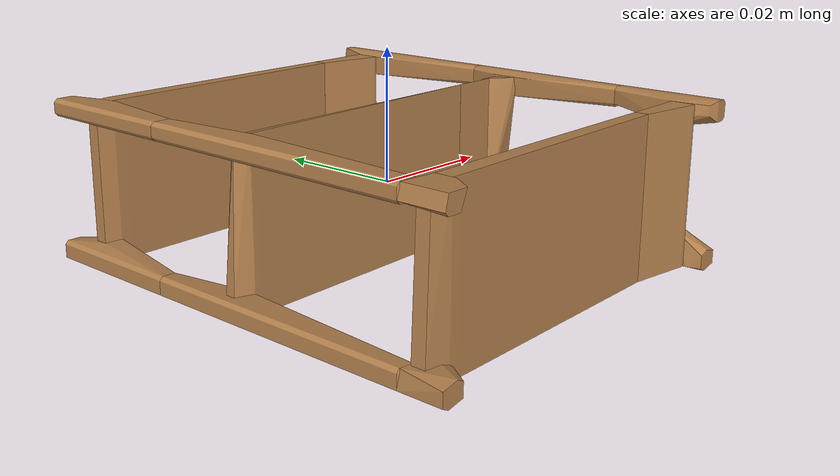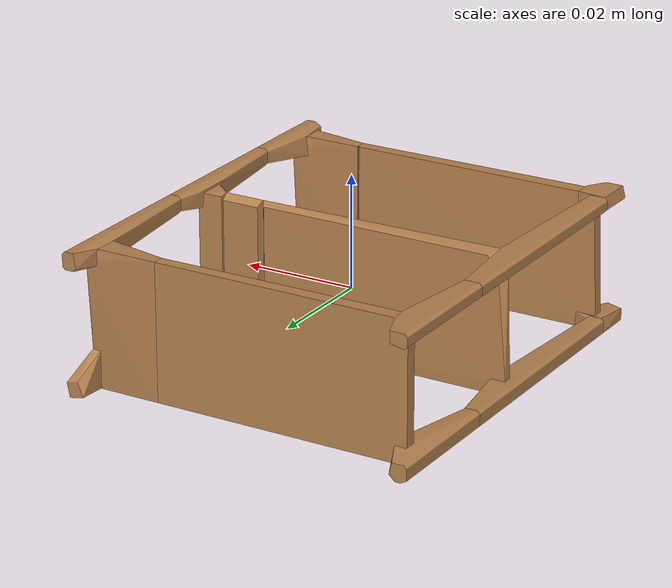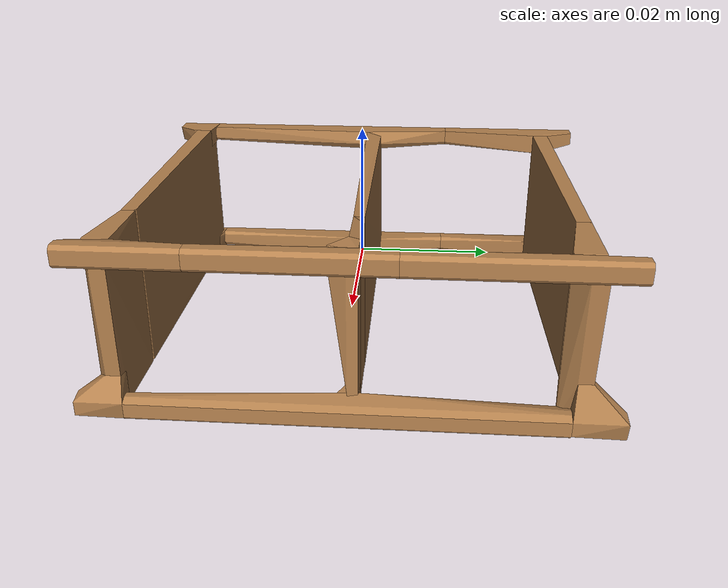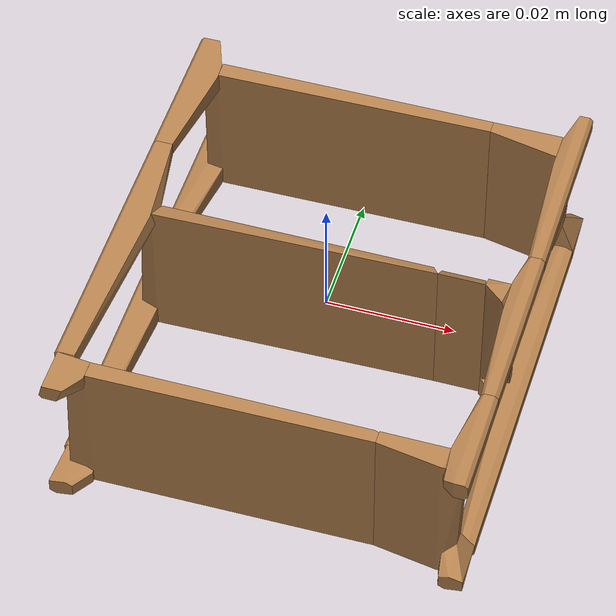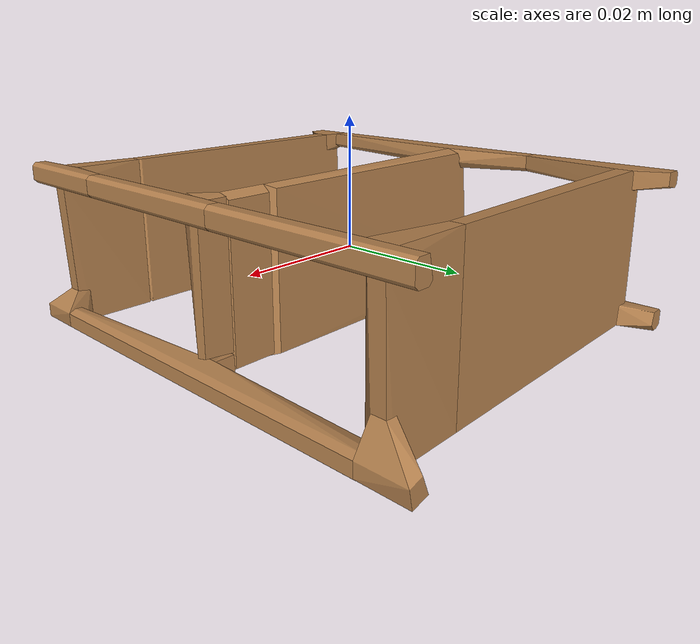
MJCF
<mujoco model="shapenet4-4">
  <asset>
    <mesh file="meshes/shapenet4-4/shapenet4-4_0.stl" name="shapenet4-4_0" scale="0.1 0.1 0.1"/>
    <mesh file="meshes/shapenet4-4/shapenet4-4_1.stl" name="shapenet4-4_1" scale="0.1 0.1 0.1"/>
    <mesh file="meshes/shapenet4-4/shapenet4-4_2.stl" name="shapenet4-4_2" scale="0.1 0.1 0.1"/>
    <mesh file="meshes/shapenet4-4/shapenet4-4_3.stl" name="shapenet4-4_3" scale="0.1 0.1 0.1"/>
    <mesh file="meshes/shapenet4-4/shapenet4-4_4.stl" name="shapenet4-4_4" scale="0.1 0.1 0.1"/>
    <mesh file="meshes/shapenet4-4/shapenet4-4_5.stl" name="shapenet4-4_5" scale="0.1 0.1 0.1"/>
    <mesh file="meshes/shapenet4-4/shapenet4-4_6.stl" name="shapenet4-4_6" scale="0.1 0.1 0.1"/>
    <mesh file="meshes/shapenet4-4/shapenet4-4_7.stl" name="shapenet4-4_7" scale="0.1 0.1 0.1"/>
    <mesh file="meshes/shapenet4-4/shapenet4-4_8.stl" name="shapenet4-4_8" scale="0.1 0.1 0.1"/>
    <mesh file="meshes/shapenet4-4/shapenet4-4_9.stl" name="shapenet4-4_9" scale="0.1 0.1 0.1"/>
    <mesh file="meshes/shapenet4-4/shapenet4-4_10.stl" name="shapenet4-4_10" scale="0.1 0.1 0.1"/>
    <mesh file="meshes/shapenet4-4/shapenet4-4_11.stl" name="shapenet4-4_11" scale="0.1 0.1 0.1"/>
    <mesh file="meshes/shapenet4-4/shapenet4-4_12.stl" name="shapenet4-4_12" scale="0.1 0.1 0.1"/>
    <mesh file="meshes/shapenet4-4/shapenet4-4_13.stl" name="shapenet4-4_13" scale="0.1 0.1 0.1"/>
    <mesh file="meshes/shapenet4-4/shapenet4-4_14.stl" name="shapenet4-4_14" scale="0.1 0.1 0.1"/>
    <mesh file="meshes/shapenet4-4/shapenet4-4_15.stl" name="shapenet4-4_15" scale="0.1 0.1 0.1"/>
    <mesh file="meshes/shapenet4-4/shapenet4-4_16.stl" name="shapenet4-4_16" scale="0.1 0.1 0.1"/>
    <mesh file="meshes/shapenet4-4/shapenet4-4_17.stl" name="shapenet4-4_17" scale="0.1 0.1 0.1"/>
    <mesh file="meshes/shapenet4-4/shapenet4-4_18.stl" name="shapenet4-4_18" scale="0.1 0.1 0.1"/>
    <mesh file="meshes/shapenet4-4/shapenet4-4_19.stl" name="shapenet4-4_19" scale="0.1 0.1 0.1"/>
    <texture file="../textures/light_wood.png" name="tex-lightwood" />
    <material name="lightwood" reflectance="0.7" texrepeat="15 15" texture="tex-lightwood" texuniform="true"/>
  </asset>
  <worldbody>
    <body>
      <body name="collision">
        <geom pos="0 0 0" mesh="shapenet4-4_0" type="mesh" solimp="0.998 0.998 0.001" solref="0.001 1" density="100" friction="0.95 0.3 0.1" material="lightwood" group="1" condim="4"/>
        <geom pos="0 0 0" mesh="shapenet4-4_1" type="mesh" solimp="0.998 0.998 0.001" solref="0.001 1" density="100" friction="0.95 0.3 0.1" material="lightwood" group="1" condim="4"/>
        <geom pos="0 0 0" mesh="shapenet4-4_2" type="mesh" solimp="0.998 0.998 0.001" solref="0.001 1" density="100" friction="0.95 0.3 0.1" material="lightwood" group="1" condim="4"/>
        <geom pos="0 0 0" mesh="shapenet4-4_3" type="mesh" solimp="0.998 0.998 0.001" solref="0.001 1" density="100" friction="0.95 0.3 0.1" material="lightwood" group="1" condim="4"/>
        <geom pos="0 0 0" mesh="shapenet4-4_4" type="mesh" solimp="0.998 0.998 0.001" solref="0.001 1" density="100" friction="0.95 0.3 0.1" material="lightwood" group="1" condim="4"/>
        <geom pos="0 0 0" mesh="shapenet4-4_5" type="mesh" solimp="0.998 0.998 0.001" solref="0.001 1" density="100" friction="0.95 0.3 0.1" material="lightwood" group="1" condim="4"/>
        <geom pos="0 0 0" mesh="shapenet4-4_6" type="mesh" solimp="0.998 0.998 0.001" solref="0.001 1" density="100" friction="0.95 0.3 0.1" material="lightwood" group="1" condim="4"/>
        <geom pos="0 0 0" mesh="shapenet4-4_7" type="mesh" solimp="0.998 0.998 0.001" solref="0.001 1" density="100" friction="0.95 0.3 0.1" material="lightwood" group="1" condim="4"/>
        <geom pos="0 0 0" mesh="shapenet4-4_8" type="mesh" solimp="0.998 0.998 0.001" solref="0.001 1" density="100" friction="0.95 0.3 0.1" material="lightwood" group="1" condim="4"/>
        <geom pos="0 0 0" mesh="shapenet4-4_9" type="mesh" solimp="0.998 0.998 0.001" solref="0.001 1" density="100" friction="0.95 0.3 0.1" material="lightwood" group="1" condim="4"/>
        <geom pos="0 0 0" mesh="shapenet4-4_10" type="mesh" solimp="0.998 0.998 0.001" solref="0.001 1" density="100" friction="0.95 0.3 0.1" material="lightwood" group="1" condim="4"/>
        <geom pos="0 0 0" mesh="shapenet4-4_11" type="mesh" solimp="0.998 0.998 0.001" solref="0.001 1" density="100" friction="0.95 0.3 0.1" material="lightwood" group="1" condim="4"/>
        <geom pos="0 0 0" mesh="shapenet4-4_12" type="mesh" solimp="0.998 0.998 0.001" solref="0.001 1" density="100" friction="0.95 0.3 0.1" material="lightwood" group="1" condim="4"/>
        <geom pos="0 0 0" mesh="shapenet4-4_13" type="mesh" solimp="0.998 0.998 0.001" solref="0.001 1" density="100" friction="0.95 0.3 0.1" material="lightwood" group="1" condim="4"/>
        <geom pos="0 0 0" mesh="shapenet4-4_14" type="mesh" solimp="0.998 0.998 0.001" solref="0.001 1" density="100" friction="0.95 0.3 0.1" material="lightwood" group="1" condim="4"/>
        <geom pos="0 0 0" mesh="shapenet4-4_15" type="mesh" solimp="0.998 0.998 0.001" solref="0.001 1" density="100" friction="0.95 0.3 0.1" material="lightwood" group="1" condim="4"/>
        <geom pos="0 0 0" mesh="shapenet4-4_16" type="mesh" solimp="0.998 0.998 0.001" solref="0.001 1" density="100" friction="0.95 0.3 0.1" material="lightwood" group="1" condim="4"/>
        <geom pos="0 0 0" mesh="shapenet4-4_17" type="mesh" solimp="0.998 0.998 0.001" solref="0.001 1" density="100" friction="0.95 0.3 0.1" material="lightwood" group="1" condim="4"/>
        <geom pos="0 0 0" mesh="shapenet4-4_18" type="mesh" solimp="0.998 0.998 0.001" solref="0.001 1" density="100" friction="0.95 0.3 0.1" material="lightwood" group="1" condim="4"/>
        <geom pos="0 0 0" mesh="shapenet4-4_19" type="mesh" solimp="0.998 0.998 0.001" solref="0.001 1" density="100" friction="0.95 0.3 0.1" material="lightwood" group="1" condim="4"/>
      </body>
      <body name="visual">
        <geom pos="0 0 0" mesh="shapenet4-4_0" type="mesh" material="lightwood" conaffinity="0" contype="0" group="0" mass="0.0001"/>
        <geom pos="0 0 0" mesh="shapenet4-4_1" type="mesh" material="lightwood" conaffinity="0" contype="0" group="0" mass="0.0001"/>
        <geom pos="0 0 0" mesh="shapenet4-4_2" type="mesh" material="lightwood" conaffinity="0" contype="0" group="0" mass="0.0001"/>
        <geom pos="0 0 0" mesh="shapenet4-4_3" type="mesh" material="lightwood" conaffinity="0" contype="0" group="0" mass="0.0001"/>
        <geom pos="0 0 0" mesh="shapenet4-4_4" type="mesh" material="lightwood" conaffinity="0" contype="0" group="0" mass="0.0001"/>
        <geom pos="0 0 0" mesh="shapenet4-4_5" type="mesh" material="lightwood" conaffinity="0" contype="0" group="0" mass="0.0001"/>
        <geom pos="0 0 0" mesh="shapenet4-4_6" type="mesh" material="lightwood" conaffinity="0" contype="0" group="0" mass="0.0001"/>
        <geom pos="0 0 0" mesh="shapenet4-4_7" type="mesh" material="lightwood" conaffinity="0" contype="0" group="0" mass="0.0001"/>
        <geom pos="0 0 0" mesh="shapenet4-4_8" type="mesh" material="lightwood" conaffinity="0" contype="0" group="0" mass="0.0001"/>
        <geom pos="0 0 0" mesh="shapenet4-4_9" type="mesh" material="lightwood" conaffinity="0" contype="0" group="0" mass="0.0001"/>
        <geom pos="0 0 0" mesh="shapenet4-4_10" type="mesh" material="lightwood" conaffinity="0" contype="0" group="0" mass="0.0001"/>
        <geom pos="0 0 0" mesh="shapenet4-4_11" type="mesh" material="lightwood" conaffinity="0" contype="0" group="0" mass="0.0001"/>
        <geom pos="0 0 0" mesh="shapenet4-4_12" type="mesh" material="lightwood" conaffinity="0" contype="0" group="0" mass="0.0001"/>
        <geom pos="0 0 0" mesh="shapenet4-4_13" type="mesh" material="lightwood" conaffinity="0" contype="0" group="0" mass="0.0001"/>
        <geom pos="0 0 0" mesh="shapenet4-4_14" type="mesh" material="lightwood" conaffinity="0" contype="0" group="0" mass="0.0001"/>
        <geom pos="0 0 0" mesh="shapenet4-4_15" type="mesh" material="lightwood" conaffinity="0" contype="0" group="0" mass="0.0001"/>
        <geom pos="0 0 0" mesh="shapenet4-4_16" type="mesh" material="lightwood" conaffinity="0" contype="0" group="0" mass="0.0001"/>
        <geom pos="0 0 0" mesh="shapenet4-4_17" type="mesh" material="lightwood" conaffinity="0" contype="0" group="0" mass="0.0001"/>
        <geom pos="0 0 0" mesh="shapenet4-4_18" type="mesh" material="lightwood" conaffinity="0" contype="0" group="0" mass="0.0001"/>
        <geom pos="0 0 0" mesh="shapenet4-4_19" type="mesh" material="lightwood" conaffinity="0" contype="0" group="0" mass="0.0001"/>
      </body>
      <site rgba="0 0 0 0" size="0.005" pos="0 0 -0.06" name="bottom_site"/>
      <site rgba="0 0 0 0" size="0.005" pos="0 0 0.04" name="top_site"/>
      <site rgba="0 0 0 0" size="0.005" pos="0.025 0.025 0" name="horizontal_radius_site"/>
    </body>
  </worldbody>
</mujoco>
